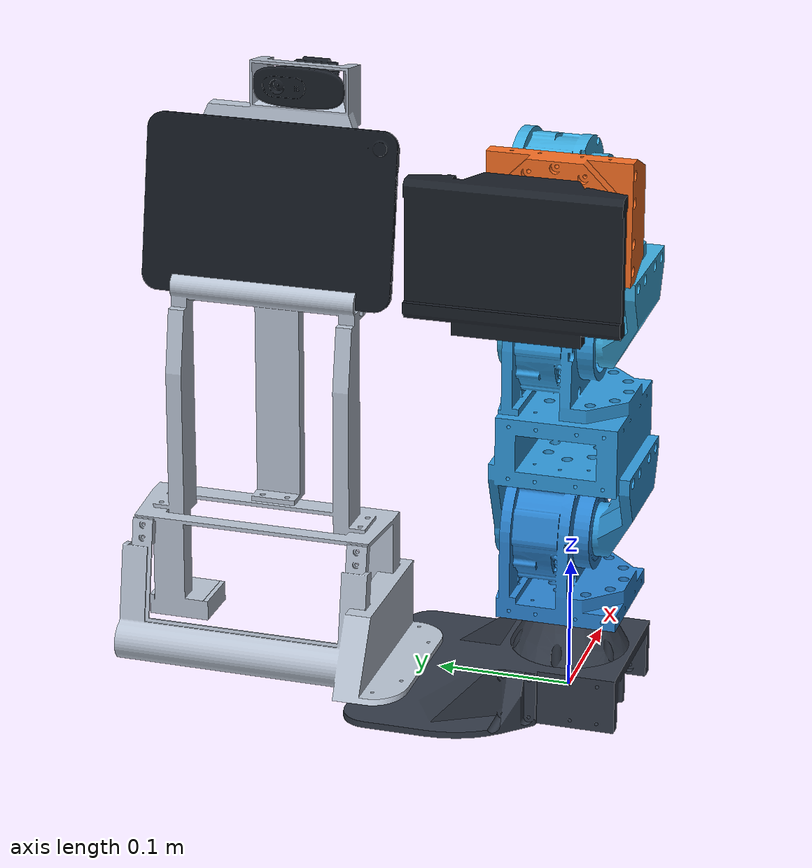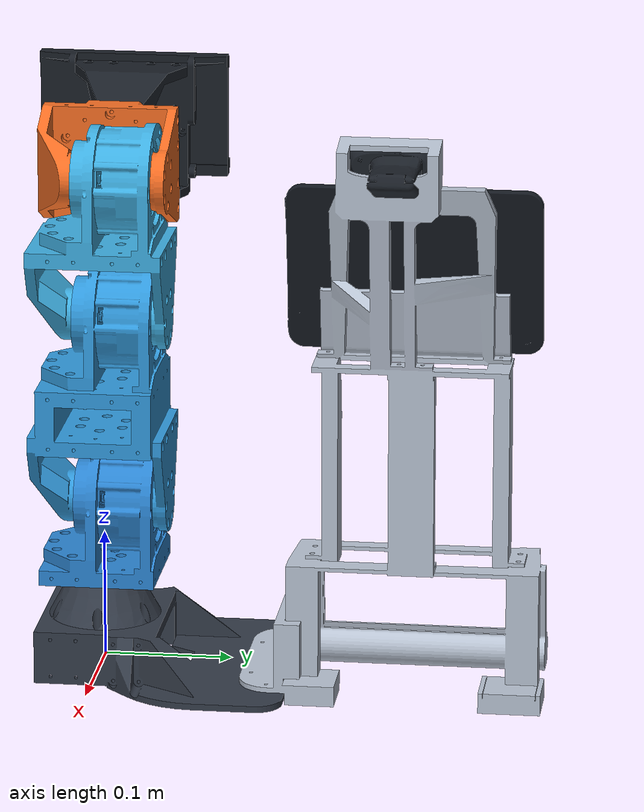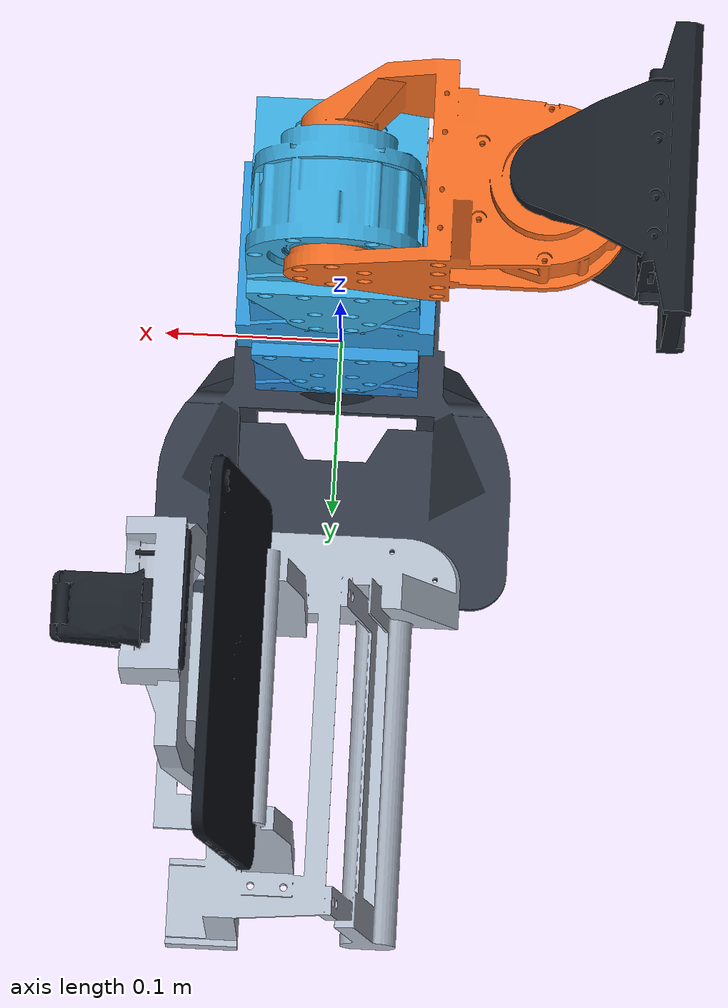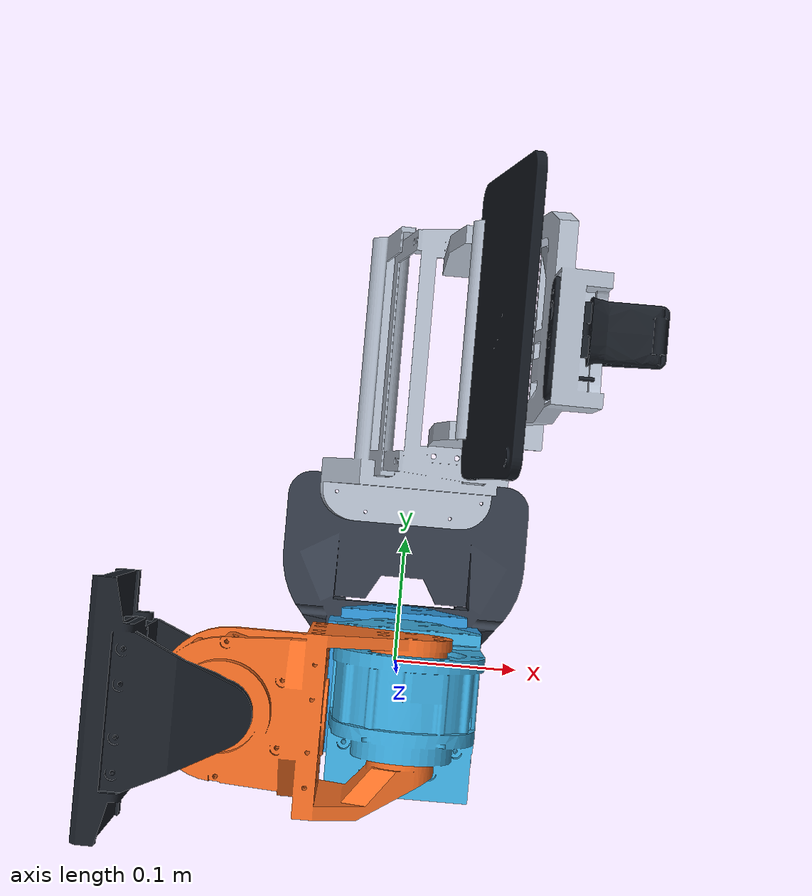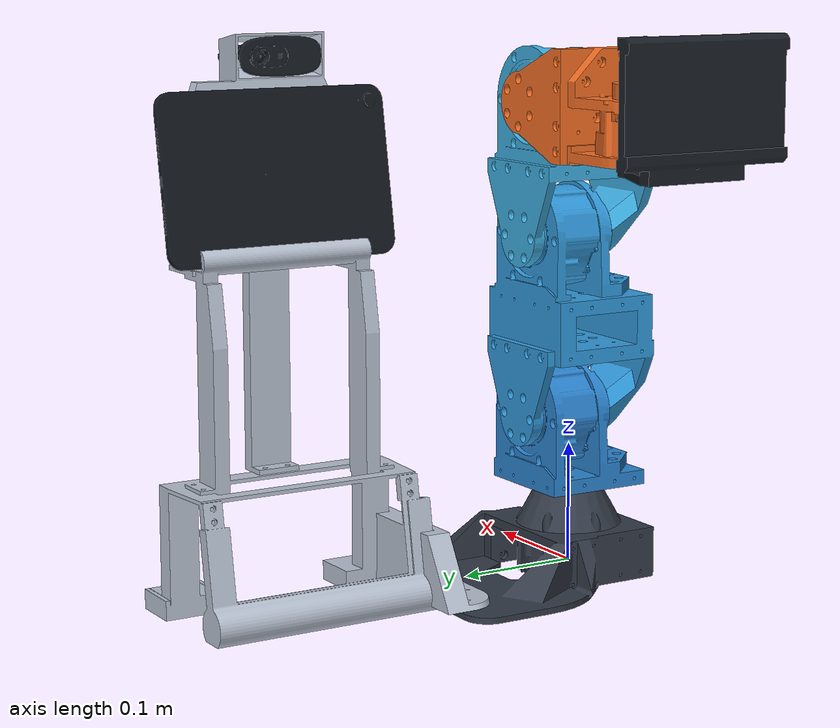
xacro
<?xml version="1.0"?>
<robot xmlns:xacro="http://www.ros.org/wiki/xacro" name="geekseek_fake_robot">
  <material name="base"><color rgba="0.20 0.23 0.28 1"/></material>
  <material name="link1"><color rgba="0.17 0.52 0.82 1"/></material>
  <material name="link2"><color rgba="0.19 0.60 0.86 1"/></material>
  <material name="link3"><color rgba="0.24 0.68 0.88 1"/></material>
  <material name="link4"><color rgba="0.96 0.43 0.14 1"/></material>
  <material name="tool"><color rgba="0.10 0.12 0.15 1"/></material>
  <material name="kiosk"><color rgba="0.72 0.76 0.82 1"/></material>
  <material name="screen"><color rgba="0.08 0.10 0.13 1"/></material>

  <xacro:macro name="cad_link" params="name mesh material mass">
    <link name="${name}">
      <visual>
        <geometry>
          <mesh filename="package://geekseek_fake_robot/meshes/${mesh}" scale="0.001 0.001 0.001"/>
        </geometry>
        <material name="${material}"/>
      </visual>
      <inertial>
        <mass value="${mass}"/>
        <inertia ixx="0.01" ixy="0" ixz="0" iyy="0.01" iyz="0" izz="0.01"/>
      </inertial>
    </link>
  </xacro:macro>

  <link name="world"/>
  <link name="kiosk_link">
    <visual>
      <geometry><mesh filename="package://geekseek_fake_robot/meshes/kiosk_body.stl" scale="0.001 0.001 0.001"/></geometry>
      <material name="kiosk"/>
    </visual>
    <visual>
      <geometry><mesh filename="package://geekseek_fake_robot/meshes/ipad.stl" scale="0.001 0.001 0.001"/></geometry>
      <material name="screen"/>
    </visual>
    <visual>
      <geometry><mesh filename="package://geekseek_fake_robot/meshes/kiosk_camera.stl" scale="0.001 0.001 0.001"/></geometry>
      <material name="tool"/>
    </visual>
  </link>
  <joint name="world_to_kiosk" type="fixed">
    <parent link="world"/><child link="kiosk_link"/>
  </joint>

  <xacro:cad_link name="base_link" mesh="base_link.stl" material="base" mass="2.0"/>
  <joint name="world_to_base" type="fixed">
    <parent link="world"/><child link="base_link"/>
  </joint>

  <xacro:cad_link name="base_yaw_link" mesh="base_yaw_link.stl" material="link1" mass="1.5"/>
  <joint name="base_yaw_joint" type="revolute">
    <parent link="base_link"/><child link="base_yaw_link"/>
    <origin xyz="0 0 0.012"/><axis xyz="0 0 1"/>
    <limit lower="-2.8" upper="2.8" effort="10" velocity="1.5"/>
  </joint>

  <xacro:cad_link name="shoulder_link" mesh="shoulder_link.stl" material="link2" mass="1.5"/>
  <joint name="shoulder_pitch_joint" type="revolute">
    <parent link="base_yaw_link"/><child link="shoulder_link"/>
    <origin xyz="0 0 0.117"/><axis xyz="0 1 0"/>
    <limit lower="-1.4" upper="1.4" effort="10" velocity="1.5"/>
  </joint>

  <xacro:cad_link name="elbow_link" mesh="elbow_link.stl" material="link3" mass="1.5"/>
  <joint name="elbow_pitch_joint" type="revolute">
    <parent link="shoulder_link"/><child link="elbow_link"/>
    <origin xyz="0 0 0.148"/><axis xyz="0 1 0"/>
    <limit lower="-1.5" upper="1.5" effort="10" velocity="1.5"/>
  </joint>

  <xacro:cad_link name="wrist_pitch_link" mesh="wrist_pitch_link.stl" material="link4" mass="1.2"/>
  <joint name="wrist_pitch_joint" type="revolute">
    <parent link="elbow_link"/><child link="wrist_pitch_link"/>
    <origin xyz="0 0 0.108"/><axis xyz="0 1 0"/>
    <limit lower="-1.5" upper="1.5" effort="8" velocity="1.8"/>
  </joint>

  <xacro:cad_link name="end_effector_link" mesh="end_effector_link.stl" material="tool" mass="0.8"/>
  <joint name="end_effector_yaw_joint" type="revolute">
    <parent link="wrist_pitch_link"/><child link="end_effector_link"/>
    <origin xyz="-0.108 0 -0.0205"/><axis xyz="0 0 1"/>
    <limit lower="-2.8" upper="2.8" effort="6" velocity="2.0"/>
  </joint>
</robot>
